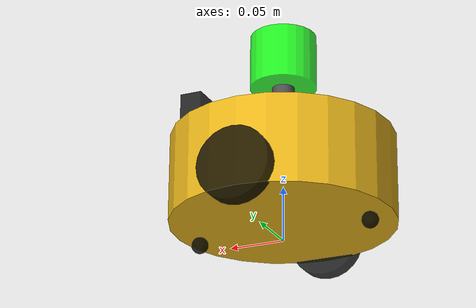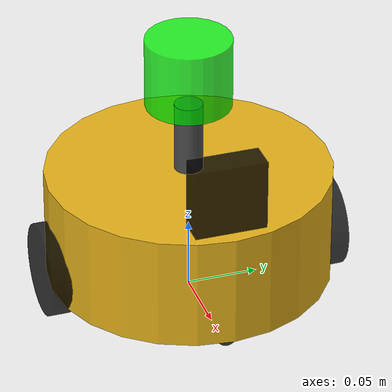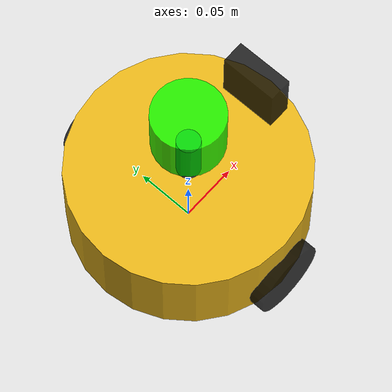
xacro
<robot name="mycar" xmlns:xacro="http://wiki.ros.org/xacro">

    <xacro:include filename="$(find urdf01_rviz)/urdf/xacro/demo05_car_base.urdf.xacro" />
    <!-- camera/laser xacro 还未写完，暂不 include，避免嵌套 robot 报错 -->
    <xacro:include filename="$(find urdf01_rviz)/urdf/xacro/demo06_car_camera.urdf.xacro" />
    <xacro:include filename="$(find urdf01_rviz)/urdf/xacro/demo07_car_laser.urdf.xacro" />

</robot>

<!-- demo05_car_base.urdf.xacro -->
<robot name="mycar" xmlns:xacro="http://wiki.ros.org/xacro">

    <xacro:property name="footprint_radius" value="0.0001" />
    <xacro:property name="base_link_radius" value="0.1" />
    <xacro:property name="base_link_length" value="0.08" />
    <xacro:property name="base_lidi_length" value="0.015" />
    <xacro:property name="base_joint_z" value="${base_link_length / 2 + base_lidi_length}" />
    <xacro:property name="wheel_radius" value="0.0325" />
    <xacro:property name="wheel_length" value="0.015" />
    <xacro:property name="small_wheel_radius" value="0.0075" />
    <xacro:property name="small_wheel_x" value="0.08" />
    <xacro:property name="PI" value="3.1415927" />
    <xacro:property name="wheel_joint_z" value="${(base_link_length / 2 + base_lidi_length - wheel_radius) * -1}" />
    <xacro:property name="small_wheel_joint_z" value="${(base_link_length / 2 + base_lidi_length - small_wheel_radius) * -1}" />

    <!-- 1.添加 base_footprint -->
    <link name="base_footprint">
        <visual>
            <geometry>
                <sphere radius="${footprint_radius}" />
            </geometry>
        </visual>
    </link>

    <!-- 2.底盘宏：base_link + 与 base_footprint 的固定关节 -->
    <xacro:macro name="car_base_func" >
        <link name="base_link">
            <visual>
                <geometry>
                    <cylinder radius="${base_link_radius}" length="${base_link_length}" />
                </geometry>
                <origin xyz="0 0 0" rpy="0 0 0" />
                <material name="car_color">
                    <color rgba="0.9 0.7 0.1 1" />
                </material>
            </visual>
        </link>

        <joint name="link2footprint" type="fixed">
            <parent link="base_footprint" />
            <child link="base_link" />
            <origin xyz="0 0 ${base_joint_z}" rpy="0 0 0" />
        </joint>
    </xacro:macro>

    <!-- 3.车轮宏：左右轮共用 -->
    <xacro:macro name="wheel_func" params="wheel_name joint_name flag">
        <link name="${wheel_name}_wheel">
            <visual>
                <geometry>
                    <cylinder radius="${wheel_radius}" length="${wheel_length}" />
                </geometry>
                <origin xyz="0 0 0" rpy="${PI / 2} 0 0" />
                <material name="wheel_color">
                    <color rgba="0 0 0 0.8" />
                </material>
            </visual>
        </link>

        <joint name="${joint_name}" type="continuous">
            <parent link="base_link" />
            <child link="${wheel_name}_wheel" />
            <origin xyz="0 ${0.1 * flag} ${wheel_joint_z}" rpy="0 0 0" />
            <axis xyz="0 1 0" />
        </joint>
    </xacro:macro>

    <!-- 4.前后支撑轮宏：小球轮共用 -->
    <xacro:macro name="small_wheel_func" params="wheel_name flag">
        <link name="${wheel_name}_wheel">
            <visual>
                <geometry>
                    <sphere radius="${small_wheel_radius}" />
                </geometry>
                <origin xyz="0 0 0" rpy="0 0 0" />
                <material name="wheel_color">
                    <color rgba="0 0 0 0.8" />
                </material>
            </visual>
        </link>

        <joint name="${wheel_name}2link" type="continuous">
            <parent link="base_link" />
            <child link="${wheel_name}_wheel" />
            <origin xyz="${small_wheel_x * flag} 0 ${small_wheel_joint_z}" rpy="0 0 0" />
            <axis xyz="0 1 0" />
        </joint>
    </xacro:macro>

    <xacro:car_base_func />
    <xacro:wheel_func wheel_name="left" joint_name="base_l_wheel_joint" flag="1" />
    <xacro:wheel_func wheel_name="right" joint_name="base_r_wheel_joint" flag="-1" />
    <xacro:small_wheel_func wheel_name="front" flag="1" />
    <xacro:small_wheel_func wheel_name="back" flag="-1" />

</robot>

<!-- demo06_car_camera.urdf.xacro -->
<robot name="mycar" xmlns:xacro="http://wiki.ros.org/xacro">

    <xacro:property name="camera_length" value="0.02" />
    <xacro:property name="camera_width" value="0.05" />
    <xacro:property name="camera_height" value="0.05" />
    <xacro:property name="joint_camera_x" value="0.08" />
    <xacro:property name="joint_camera_y" value="0" />
    <xacro:property name="joint_camera_z" value="${base_link_length / 2 + camera_height / 2}" />

    <link name="camera">
        <visual>
            <geometry>
                <box size="${camera_length} ${camera_width} ${camera_height}" />
            </geometry>

            <material name="camera_color">
                <color rgba="0 0 0 0.8" />
            </material>
        </visual>
    </link>

    <joint name="camera2base" type="fixed">
        <parent link="base_link" />
        <child link="camera" />
        <origin xyz="${joint_camera_x} ${joint_camera_y} ${joint_camera_z}" rpy="0 0 0" />
    </joint>

</robot>

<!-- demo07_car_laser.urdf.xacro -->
<robot name="mycar" xmlns:xacro="http://wiki.ros.org/xacro">
    <xacro:property name="support_radius" value="0.01" />
    <xacro:property name="support_length" value="0.05" />
    <xacro:property name="laser_radius" value="0.03" />
    <xacro:property name="laser_length" value="0.05" />

    <xacro:property name="joint_support_x" value="0" />
    <xacro:property name="joint_support_y" value="0" />
    <xacro:property name="joint_support_z" value="${base_link_length / 2 + support_length / 2}" />

    <xacro:property name="joint_laser_x" value="0" />
    <xacro:property name="joint_laser_y" value="0" />
    <xacro:property name="joint_laser_z" value="${support_length / 2 + laser_length / 2}" />

    <link name="support">
        <visual>
            <geometry>
                <cylinder radius="${support_radius}" length="${support_length}" />
            </geometry>
            <material name="support_color">
                <color rgba="0.3 0.3 0.3 1" />
            </material>
        </visual>
    </link>

    <link name="laser">
        <visual>
            <geometry>
                <cylinder radius="${laser_radius}" length="${laser_length}" />
            </geometry>
            <material name="laser_color">
                <color rgba="0 1 0 0.8" />
            </material>
        </visual>
    </link>

    <joint name="support2base" type="fixed">
        <parent link="base_link" />
        <child link="support" />
        <origin xyz="${joint_support_x} ${joint_support_y} ${joint_support_z}" rpy="0 0 0" />
    </joint>

    <joint name="laser2support" type="fixed">
        <parent link="support" />
        <child link="laser" />
        <origin xyz="${joint_laser_x} ${joint_laser_y} ${joint_laser_z}" rpy="0 0 0" />
    </joint>
</robot>
